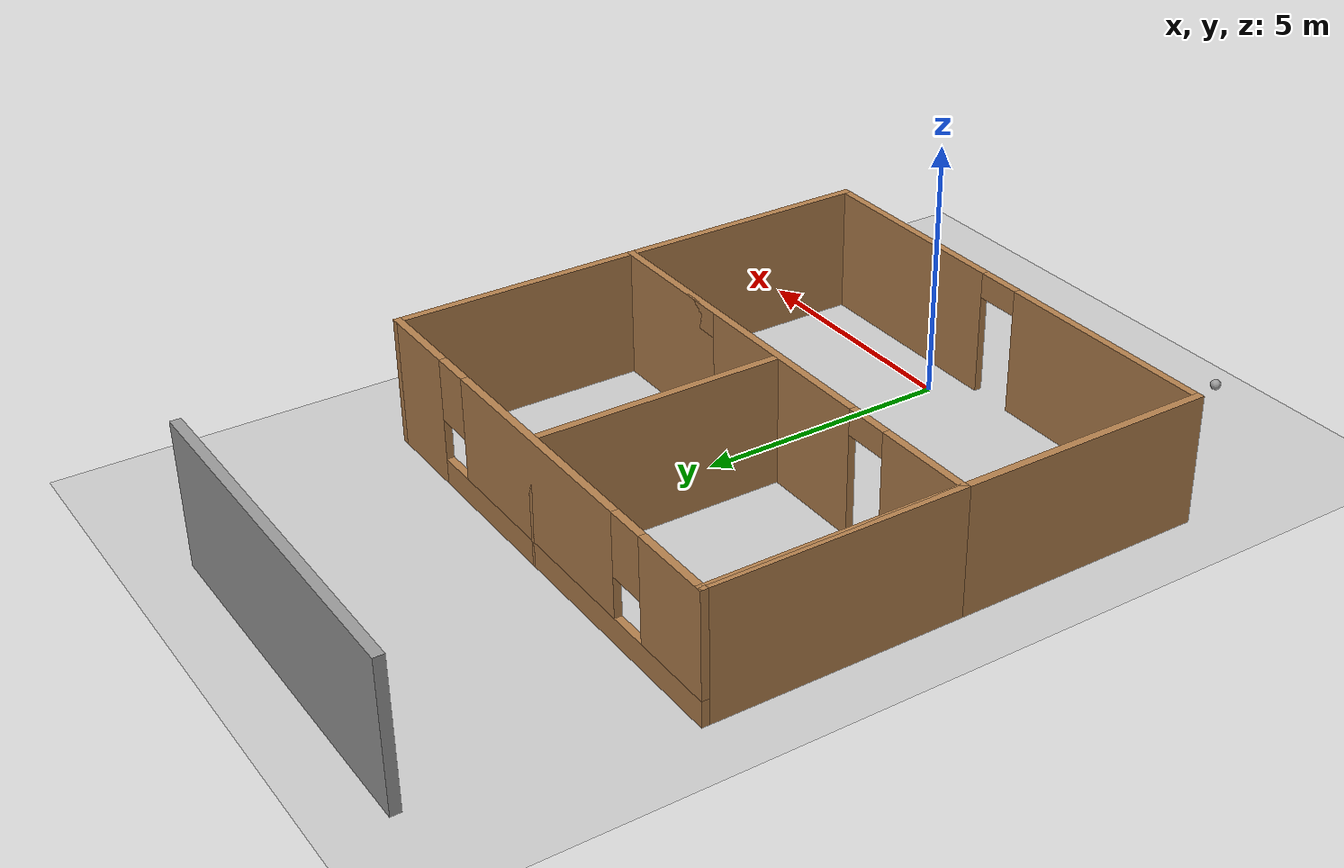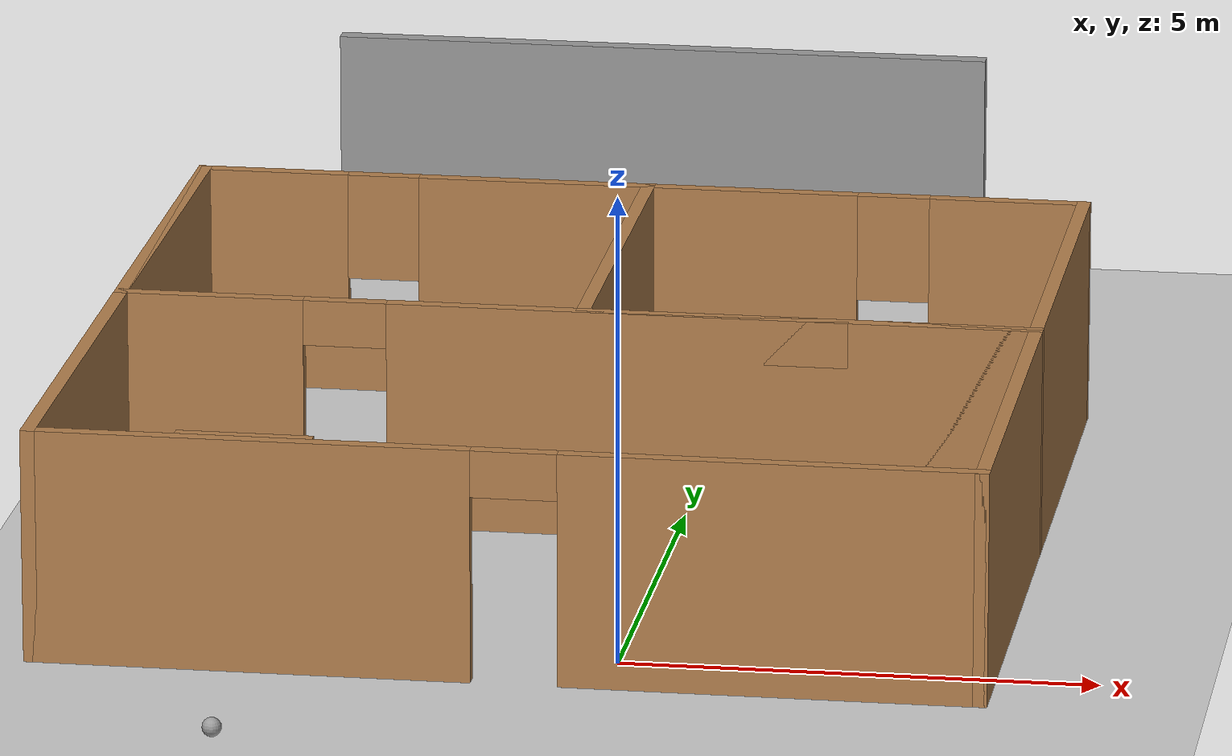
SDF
<sdf version="1.6">
 <world name="default">
  <light name="sun" type="directional">
   <pose>0 0 10 0 -0 0</pose>
   <diffuse>0.8 0.8 0.8 1</diffuse>
   <specular>0.2 0.2 0.2 1</specular>
   <attenuation>
    <range>1000</range>
    <constant>0.9</constant>
    <linear>0.01</linear>
    <quadratic>0.001</quadratic>
   </attenuation>
   <direction>-0.5 0.1 -0.9</direction>
  </light>
  <model name="ground_plane">
   <static>1</static>
   <link name="link">
    <collision name="collision">
     <geometry><plane><normal>0 0 1</normal><size>100 100</size></plane></geometry>
     <surface>
      <contact><collide_bitmask>65535</collide_bitmask></contact>
      <friction><ode><mu>100</mu><mu2>50</mu2></ode></friction>
     </surface>
    </collision>
    <visual name="visual">
     <cast_shadows>0</cast_shadows>
     <geometry><plane><normal>0 0 1</normal><size>100 100</size></plane></geometry>
     <material>
      <script><uri>file://media/materials/scripts/gazebo.material</uri><name>Gazebo/Grey</name></script>
     </material>
    </visual>
   </link>
  </model>
  <gravity>0 0 -9.8</gravity>
  <magnetic_field>6e-06 2.3e-05 -4.2e-05</magnetic_field>
  <atmosphere type="adiabatic"/>
  <physics name="default_physics" default="0" type="ode">
   <max_step_size>0.001</max_step_size>
   <real_time_factor>1</real_time_factor>
   <real_time_update_rate>1000</real_time_update_rate>
  </physics>
  <scene><ambient>0.4 0.4 0.4 1</ambient><background>0.7 0.7 0.7 1</background><shadows>1</shadows></scene>
  <spherical_coordinates>
   <surface_model>EARTH_WGS84</surface_model>
   <latitude_deg>0</latitude_deg>
   <longitude_deg>0</longitude_deg>
   <elevation>0</elevation>
   <heading_deg>0</heading_deg>
  </spherical_coordinates>
  <model name="NewOffice">
   <pose>-1.07537 4.14239 0 0 -0 0</pose>
   <link name="Wall_12">
    <collision name="Wall_12_Collision">
     <geometry><box><size>10 0.15 2.5</size></box></geometry>
     <pose>0 0 1.25 0 -0 0</pose>
    </collision>
    <visual name="Wall_12_Visual">
     <pose>0 0 1.25 0 -0 0</pose>
     <geometry><box><size>10 0.15 2.5</size></box></geometry>
     <material>
      <script><uri>file://media/materials/scripts/gazebo.material</uri><name>Gazebo/Wood</name></script>
      <ambient>1 1 1 1</ambient>
     </material>
     <meta><layer>0</layer></meta>
    </visual>
    <pose>-4.925 0 0 0 0 -1.5708</pose>
   </link>
   <link name="Wall_13">
    <pose>0 -4.925 0 0 -0 0</pose>
    <visual name="Wall_13_Visual_0">
     <pose>-2.66455 0 1.25 0 -0 0</pose>
     <geometry><box><size>4.67089 0.15 2.5</size></box></geometry>
     <material>
      <script><uri>file://media/materials/scripts/gazebo.material</uri><name>Gazebo/Wood</name></script>
      <ambient>1 1 1 1</ambient>
     </material>
     <meta><layer>0</layer></meta>
    </visual>
    <collision name="Wall_13_Collision_0">
     <geometry><box><size>4.67089 0.15 2.5</size></box></geometry>
     <pose>-2.66455 0 1.25 0 -0 0</pose>
    </collision>
    <visual name="Wall_13_Visual_1">
     <pose>2.78545 0 1.25 0 -0 0</pose>
     <geometry><box><size>4.42911 0.15 2.5</size></box></geometry>
     <material>
      <script><uri>file://media/materials/scripts/gazebo.material</uri><name>Gazebo/Wood</name></script>
      <ambient>1 1 1 1</ambient>
     </material>
     <meta><layer>0</layer></meta>
    </visual>
    <collision name="Wall_13_Collision_1">
     <geometry><box><size>4.42911 0.15 2.5</size></box></geometry>
     <pose>2.78545 0 1.25 0 -0 0</pose>
    </collision>
    <visual name="Wall_13_Visual_2">
     <pose>0.120891 0 2.25 0 -0 0</pose>
     <geometry><box><size>0.9 0.15 0.5</size></box></geometry>
     <material>
      <script><uri>file://media/materials/scripts/gazebo.material</uri><name>Gazebo/Wood</name></script>
      <ambient>1 1 1 1</ambient>
     </material>
     <meta><layer>0</layer></meta>
    </visual>
    <collision name="Wall_13_Collision_2">
     <geometry><box><size>0.9 0.15 0.5</size></box></geometry>
     <pose>0.120891 0 2.25 0 -0 0</pose>
    </collision>
   </link>
   <link name="Wall_14">
    <collision name="Wall_14_Collision">
     <geometry><box><size>10 0.15 2.5</size></box></geometry>
     <pose>0 0 1.25 0 -0 0</pose>
    </collision>
    <visual name="Wall_14_Visual">
     <pose>0 0 1.25 0 -0 0</pose>
     <geometry><box><size>10 0.15 2.5</size></box></geometry>
     <material>
      <script><uri>file://media/materials/scripts/gazebo.material</uri><name>Gazebo/Wood</name></script>
      <ambient>1 1 1 1</ambient>
     </material>
     <meta><layer>0</layer></meta>
    </visual>
    <pose>4.925 0 0 0 -0 1.5708</pose>
   </link>
   <link name="Wall_15">
    <pose>0 4.925 0 0 -0 3.14159</pose>
    <visual name="Wall_15_Visual_0">
     <pose>-4.11067 0 1.25 0 -0 0</pose>
     <geometry><box><size>1.77866 0.15 2.5</size></box></geometry>
     <material>
      <script><uri>file://media/materials/scripts/gazebo.material</uri><name>Gazebo/Wood</name></script>
      <ambient>1 1 1 1</ambient>
     </material>
     <meta><layer>0</layer></meta>
    </visual>
    <collision name="Wall_15_Collision_0">
     <geometry><box><size>1.77866 0.15 2.5</size></box></geometry>
     <pose>-4.11067 0 1.25 0 -0 0</pose>
    </collision>
    <visual name="Wall_15_Visual_1">
     <pose>0.889332 0 0.25 0 -0 0</pose>
     <geometry><box><size>8.22134 0.15 0.5</size></box></geometry>
     <material>
      <script><uri>file://media/materials/scripts/gazebo.material</uri><name>Gazebo/Wood</name></script>
      <ambient>1 1 1 1</ambient>
     </material>
     <meta><layer>0</layer></meta>
    </visual>
    <collision name="Wall_15_Collision_1">
     <geometry><box><size>8.22134 0.15 0.5</size></box></geometry>
     <pose>0.889332 0 0.25 0 -0 0</pose>
    </collision>
    <visual name="Wall_15_Visual_2">
     <pose>0.037908 0 1.5 0 -0 0</pose>
     <geometry><box><size>4.91849 0.15 2</size></box></geometry>
     <material>
      <script><uri>file://media/materials/scripts/gazebo.material</uri><name>Gazebo/Wood</name></script>
      <ambient>1 1 1 1</ambient>
     </material>
     <meta><layer>0</layer></meta>
    </visual>
    <collision name="Wall_15_Collision_2">
     <geometry><box><size>4.91849 0.15 2</size></box></geometry>
     <pose>0.037908 0 1.5 0 -0 0</pose>
    </collision>
    <visual name="Wall_15_Visual_3">
     <pose>4.14858 0 1.5 0 -0 0</pose>
     <geometry><box><size>1.70285 0.15 2</size></box></geometry>
     <material>
      <script><uri>file://media/materials/scripts/gazebo.material</uri><name>Gazebo/Wood</name></script>
      <ambient>1 1 1 1</ambient>
     </material>
     <meta><layer>0</layer></meta>
    </visual>
    <collision name="Wall_15_Collision_3">
     <geometry><box><size>1.70285 0.15 2</size></box></geometry>
     <pose>4.14858 0 1.5 0 -0 0</pose>
    </collision>
    <visual name="Wall_15_Visual_4">
     <pose>-2.82134 0 1.9 0 -0 0</pose>
     <geometry><box><size>0.8 0.15 1.2</size></box></geometry>
     <material>
      <script><uri>file://media/materials/scripts/gazebo.material</uri><name>Gazebo/Wood</name></script>
      <ambient>1 1 1 1</ambient>
     </material>
     <meta><layer>0</layer></meta>
    </visual>
    <collision name="Wall_15_Collision_4">
     <geometry><box><size>0.8 0.15 1.2</size></box></geometry>
     <pose>-2.82134 0 1.9 0 -0 0</pose>
    </collision>
    <visual name="Wall_15_Visual_5">
     <pose>2.89715 0 1.9 0 -0 0</pose>
     <geometry><box><size>0.8 0.15 1.2</size></box></geometry>
     <material>
      <script><uri>file://media/materials/scripts/gazebo.material</uri><name>Gazebo/Wood</name></script>
      <ambient>1 1 1 1</ambient>
     </material>
     <meta><layer>0</layer></meta>
    </visual>
    <collision name="Wall_15_Collision_5">
     <geometry><box><size>0.8 0.15 1.2</size></box></geometry>
     <pose>2.89715 0 1.9 0 -0 0</pose>
    </collision>
   </link>
   <link name="Wall_16">
    <collision name="Wall_16_Collision">
     <geometry><box><size>5 0.15 2.5</size></box></geometry>
     <pose>0 0 1.25 0 -0 0</pose>
    </collision>
    <visual name="Wall_16_Visual">
     <pose>0 0 1.25 0 -0 0</pose>
     <geometry><box><size>5 0.15 2.5</size></box></geometry>
     <material>
      <script><uri>file://media/materials/scripts/gazebo.material</uri><name>Gazebo/Wood</name></script>
      <ambient>1 1 1 1</ambient>
     </material>
     <meta><layer>0</layer></meta>
    </visual>
    <pose>-4.925 2.5 0 0 0 -1.5708</pose>
   </link>
   <link name="Wall_17">
    <pose>0 0.075 0 0 -0 0</pose>
    <visual name="Wall_17_Visual_0">
     <pose>-3.97079 0 1.25 0 -0 0</pose>
     <geometry><box><size>2.05841 0.15 2.5</size></box></geometry>
     <material>
      <script><uri>file://media/materials/scripts/gazebo.material</uri><name>Gazebo/Wood</name></script>
      <ambient>1 1 1 1</ambient>
     </material>
     <meta><layer>0</layer></meta>
    </visual>
    <collision name="Wall_17_Collision_0">
     <geometry><box><size>2.05841 0.15 2.5</size></box></geometry>
     <pose>-3.97079 0 1.25 0 -0 0</pose>
    </collision>
    <visual name="Wall_17_Visual_1">
     <pose>1.47921 0 1.25 0 -0 0</pose>
     <geometry><box><size>7.04159 0.15 2.5</size></box></geometry>
     <material>
      <script><uri>file://media/materials/scripts/gazebo.material</uri><name>Gazebo/Wood</name></script>
      <ambient>1 1 1 1</ambient>
     </material>
     <meta><layer>0</layer></meta>
    </visual>
    <collision name="Wall_17_Collision_1">
     <geometry><box><size>7.04159 0.15 2.5</size></box></geometry>
     <pose>1.47921 0 1.25 0 -0 0</pose>
    </collision>
    <visual name="Wall_17_Visual_2">
     <pose>-2.49159 0 2.25 0 -0 0</pose>
     <geometry><box><size>0.9 0.15 0.5</size></box></geometry>
     <material>
      <script><uri>file://media/materials/scripts/gazebo.material</uri><name>Gazebo/Wood</name></script>
      <ambient>1 1 1 1</ambient>
     </material>
     <meta><layer>0</layer></meta>
    </visual>
    <collision name="Wall_17_Collision_2">
     <geometry><box><size>0.9 0.15 0.5</size></box></geometry>
     <pose>-2.49159 0 2.25 0 -0 0</pose>
    </collision>
   </link>
   <link name="Wall_18">
    <pose>2.5 0.075 0 0 -0 3.14159</pose>
    <visual name="Wall_18_Visual_0">
     <pose>-1.4633 0 1.25 0 -0 0</pose>
     <geometry><box><size>2.0734 0.15 2.5</size></box></geometry>
     <material>
      <script><uri>file://media/materials/scripts/gazebo.material</uri><name>Gazebo/Wood</name></script>
      <ambient>1 1 1 1</ambient>
     </material>
     <meta><layer>0</layer></meta>
    </visual>
    <collision name="Wall_18_Collision_0">
     <geometry><box><size>2.0734 0.15 2.5</size></box></geometry>
     <pose>-1.4633 0 1.25 0 -0 0</pose>
    </collision>
    <visual name="Wall_18_Visual_1">
     <pose>1.4867 0 1.25 0 -0 0</pose>
     <geometry><box><size>2.0266 0.15 2.5</size></box></geometry>
     <material>
      <script><uri>file://media/materials/scripts/gazebo.material</uri><name>Gazebo/Wood</name></script>
      <ambient>1 1 1 1</ambient>
     </material>
     <meta><layer>0</layer></meta>
    </visual>
    <collision name="Wall_18_Collision_1">
     <geometry><box><size>2.0266 0.15 2.5</size></box></geometry>
     <pose>1.4867 0 1.25 0 -0 0</pose>
    </collision>
    <visual name="Wall_18_Visual_2">
     <pose>0.023395 0 2.25 0 -0 0</pose>
     <geometry><box><size>0.9 0.15 0.5</size></box></geometry>
     <material>
      <script><uri>file://media/materials/scripts/gazebo.material</uri><name>Gazebo/Wood</name></script>
      <ambient>1 1 1 1</ambient>
     </material>
     <meta><layer>0</layer></meta>
    </visual>
    <collision name="Wall_18_Collision_2">
     <geometry><box><size>0.9 0.15 0.5</size></box></geometry>
     <pose>0.023395 0 2.25 0 -0 0</pose>
    </collision>
   </link>
   <link name="Wall_19">
    <collision name="Wall_19_Collision">
     <geometry><box><size>5 0.15 2.5</size></box></geometry>
     <pose>0 0 1.25 0 -0 0</pose>
    </collision>
    <visual name="Wall_19_Visual">
     <pose>0 0 1.25 0 -0 0</pose>
     <geometry><box><size>5 0.15 2.5</size></box></geometry>
     <material>
      <script><uri>file://media/materials/scripts/gazebo.material</uri><name>Gazebo/Wood</name></script>
      <ambient>1 1 1 1</ambient>
     </material>
     <meta><layer>0</layer></meta>
    </visual>
    <pose>0.075 2.5 0 0 -0 1.5708</pose>
   </link>
   <static>1</static>
  </model>
  <model name="cabinet">
   <static>1</static>
   <link name="cabinet_bottom_plate">
    <inertial>
     <pose>0 0 -1 0 -0 0</pose>
     <inertia><ixx>2.05</ixx><ixy>0</ixy><ixz>0</ixz><iyy>2.05</iyy><iyz>0</iyz><izz>2.05</izz></inertia>
     <mass>25</mass>
    </inertial>
    <collision name="cabinet_bottom_plate_geom">
     <pose>0 0 0.01 0 -0 0</pose>
     <geometry><box><size>0.45 0.45 0.02</size></box></geometry>
    </collision>
    <visual name="cabinet_bottom_plate_geom_visual">
     <pose>0 0 0.01 0 -0 0</pose>
     <geometry><box><size>0.45 0.45 0.02</size></box></geometry>
     <material>
      <script><uri>file://media/materials/scripts/gazebo.material</uri><name>Gazebo/Wood</name></script>
     </material>
    </visual>
    <collision name="cabinet_bottom_plate_geom_cabinet_back_plate">
     <pose>0.235 0 0.51 0 -0 0</pose>
     <geometry><box><size>0.02 0.45 1.02</size></box></geometry>
    </collision>
    <visual name="cabinet_bottom_plate_geom_cabinet_back_plate_visual">
     <pose>0.235 0 0.51 0 -0 0</pose>
     <geometry><box><size>0.02 0.45 1.02</size></box></geometry>
     <material>
      <script><uri>file://media/materials/scripts/gazebo.material</uri><name>Gazebo/Wood</name></script>
     </material>
    </visual>
    <collision name="cabinet_bottom_plate_geom_cabinet_left_plate">
     <pose>0 0.235 0.51 0 -0 0</pose>
     <geometry><box><size>0.45 0.02 1.02</size></box></geometry>
    </collision>
    <visual name="cabinet_bottom_plate_geom_cabinet_left_plate_visual">
     <pose>0 0.235 0.51 0 -0 0</pose>
     <geometry><box><size>0.45 0.02 1.02</size></box></geometry>
     <material>
      <script><uri>file://media/materials/scripts/gazebo.material</uri><name>Gazebo/Wood</name></script>
     </material>
    </visual>
    <collision name="cabinet_bottom_plate_geom_cabinet_middle_plate">
     <pose>0 0 0.51 0 -0 0</pose>
     <geometry><box><size>0.45 0.45 0.02</size></box></geometry>
    </collision>
    <visual name="cabinet_bottom_plate_geom_cabinet_middle_plate_visual">
     <pose>0 0 0.51 0 -0 0</pose>
     <geometry><box><size>0.45 0.45 0.02</size></box></geometry>
     <material>
      <script><uri>file://media/materials/scripts/gazebo.material</uri><name>Gazebo/Wood</name></script>
     </material>
    </visual>
    <collision name="cabinet_bottom_plate_geom_cabinet_right_plate">
     <pose>0 -0.235 0.51 0 -0 0</pose>
     <geometry><box><size>0.45 0.02 1.02</size></box></geometry>
    </collision>
    <visual name="cabinet_bottom_plate_geom_cabinet_right_plate_visual">
     <pose>0 -0.235 0.51 0 -0 0</pose>
     <geometry><box><size>0.45 0.02 1.02</size></box></geometry>
     <material>
      <script><uri>file://media/materials/scripts/gazebo.material</uri><name>Gazebo/Wood</name></script>
     </material>
    </visual>
    <collision name="cabinet_bottom_plate_geom_cabinet_top_plate">
     <pose>0 0 1.01 0 -0 0</pose>
     <geometry><box><size>0.45 0.45 0.02</size></box></geometry>
    </collision>
    <visual name="cabinet_bottom_plate_geom_cabinet_top_plate_visual">
     <pose>0 0 1.01 0 -0 0</pose>
     <geometry><box><size>0.45 0.45 0.02</size></box></geometry>
     <material>
      <script><uri>file://media/materials/scripts/gazebo.material</uri><name>Gazebo/Wood</name></script>
     </material>
    </visual>
   </link>
   <pose>-5.47402 6.64923 0 0 -0 0</pose>
  </model>
  <model name="grey_wall">
   <static>1</static>
   <link name="link">
    <pose>0 0 1.4 0 -0 0</pose>
    <collision name="collision"><geometry><box><size>7.5 0.2 2.8</size></box></geometry></collision>
    <visual name="visual">
     <cast_shadows>0</cast_shadows>
     <geometry><box><size>7.5 0.2 2.8</size></box></geometry>
     <material>
      <script>
       <uri>model://grey_wall/materials/scripts</uri>
       <uri>model://grey_wall/materials/textures</uri>
       <name>vrc/grey_wall</name>
      </script>
     </material>
    </visual>
   </link>
   <pose>-1.51869 13.7721 0 0 -0 0</pose>
  </model>
  <model name="table">
   <static>1</static>
   <link name="link">
    <collision name="surface">
     <pose>0 0 1 0 -0 0</pose>
     <geometry><box><size>1.5 0.8 0.03</size></box></geometry>
     <surface><friction><ode><mu>0.6</mu><mu2>0.6</mu2></ode></friction></surface>
    </collision>
    <visual name="visual1">
     <pose>0 0 1 0 -0 0</pose>
     <geometry><box><size>1.5 0.8 0.03</size></box></geometry>
     <material>
      <script><uri>file://media/materials/scripts/gazebo.material</uri><name>Gazebo/Wood</name></script>
     </material>
    </visual>
    <collision name="front_left_leg">
     <pose>0.68 0.38 0.5 0 -0 0</pose>
     <geometry><cylinder><radius>0.02</radius><length>1</length></cylinder></geometry>
    </collision>
    <visual name="front_left_leg">
     <pose>0.68 0.38 0.5 0 -0 0</pose>
     <geometry><cylinder><radius>0.02</radius><length>1</length></cylinder></geometry>
     <material>
      <script><uri>file://media/materials/scripts/gazebo.material</uri><name>Gazebo/Grey</name></script>
     </material>
    </visual>
    <collision name="front_right_leg">
     <pose>0.68 -0.38 0.5 0 -0 0</pose>
     <geometry><cylinder><radius>0.02</radius><length>1</length></cylinder></geometry>
    </collision>
    <visual name="front_right_leg">
     <pose>0.68 -0.38 0.5 0 -0 0</pose>
     <geometry><cylinder><radius>0.02</radius><length>1</length></cylinder></geometry>
     <material>
      <script><uri>file://media/materials/scripts/gazebo.material</uri><name>Gazebo/Grey</name></script>
     </material>
    </visual>
    <collision name="back_right_leg">
     <pose>-0.68 -0.38 0.5 0 -0 0</pose>
     <geometry><cylinder><radius>0.02</radius><length>1</length></cylinder></geometry>
    </collision>
    <visual name="back_right_leg">
     <pose>-0.68 -0.38 0.5 0 -0 0</pose>
     <geometry><cylinder><radius>0.02</radius><length>1</length></cylinder></geometry>
     <material>
      <script><uri>file://media/materials/scripts/gazebo.material</uri><name>Gazebo/Grey</name></script>
     </material>
    </visual>
    <collision name="back_left_leg">
     <pose>-0.68 0.38 0.5 0 -0 0</pose>
     <geometry><cylinder><radius>0.02</radius><length>1</length></cylinder></geometry>
    </collision>
    <visual name="back_left_leg">
     <pose>-0.68 0.38 0.5 0 -0 0</pose>
     <geometry><cylinder><radius>0.02</radius><length>1</length></cylinder></geometry>
     <material>
      <script><uri>file://media/materials/scripts/gazebo.material</uri><name>Gazebo/Grey</name></script>
     </material>
    </visual>
   </link>
   <pose>-4.64167 3.65123 0 0 -0 0</pose>
  </model>
  <model name="my_ball">
   <link name="link_0">
    <inertial>
     <mass>1</mass>
     <inertia><ixx>0.1</ixx><ixy>0</ixy><ixz>0</ixz><iyy>0.1</iyy><iyz>0</iyz><izz>0.1</izz></inertia>
    </inertial>
    <visual name="visual">
     <geometry><sphere><radius>0.1</radius></sphere></geometry>
     <material>
      <lighting>1</lighting>
      <script><uri>file://media/materials/scripts/gazebo.material</uri><name>Gazebo/Grey</name></script>
      <shader type="pixel"><normal_map>__default__</normal_map></shader>
      <ambient>1 1 1 1</ambient>
      <diffuse>1 1 1 1</diffuse>
      <specular>1 1 1 1</specular>
      <emissive>1 1 1 1</emissive>
     </material>
    </visual>
    <collision name="collision">
     <geometry><sphere><radius>0.1</radius></sphere></geometry>
     <surface>
      <friction>
       <ode><mu>1</mu><mu2>1</mu2><fdir1>0 0 0</fdir1><slip1>0</slip1><slip2>0</slip2></ode>
       <torsional>
        <coefficient>1</coefficient>
        <patch_radius>0</patch_radius>
        <surface_radius>0</surface_radius>
        <use_patch_radius>1</use_patch_radius>
        <ode><slip>0</slip></ode>
       </torsional>
      </friction>
      <bounce><restitution_coefficient>0</restitution_coefficient><threshold>1e+06</threshold></bounce>
      <contact>
       <collide_without_contact>0</collide_without_contact>
       <collide_without_contact_bitmask>1</collide_without_contact_bitmask>
       <collide_bitmask>1</collide_bitmask>
       <ode>
        <soft_cfm>0</soft_cfm>
        <soft_erp>0.2</soft_erp>
        <kp>1e+13</kp>
        <kd>1</kd>
        <max_vel>0.01</max_vel>
        <min_depth>0</min_depth>
       </ode>
       <bullet>
        <split_impulse>1</split_impulse>
        <split_impulse_penetration_threshold>-0.01</split_impulse_penetration_threshold>
        <soft_cfm>0</soft_cfm>
        <soft_erp>0.2</soft_erp>
        <kp>1e+13</kp>
        <kd>1</kd>
       </bullet>
      </contact>
     </surface>
    </collision>
   </link>
   <static>0</static>
   <pose>-3.50499 -4.01713 0.5 0 -0 0</pose>
  </model>
 </world>
</sdf>
